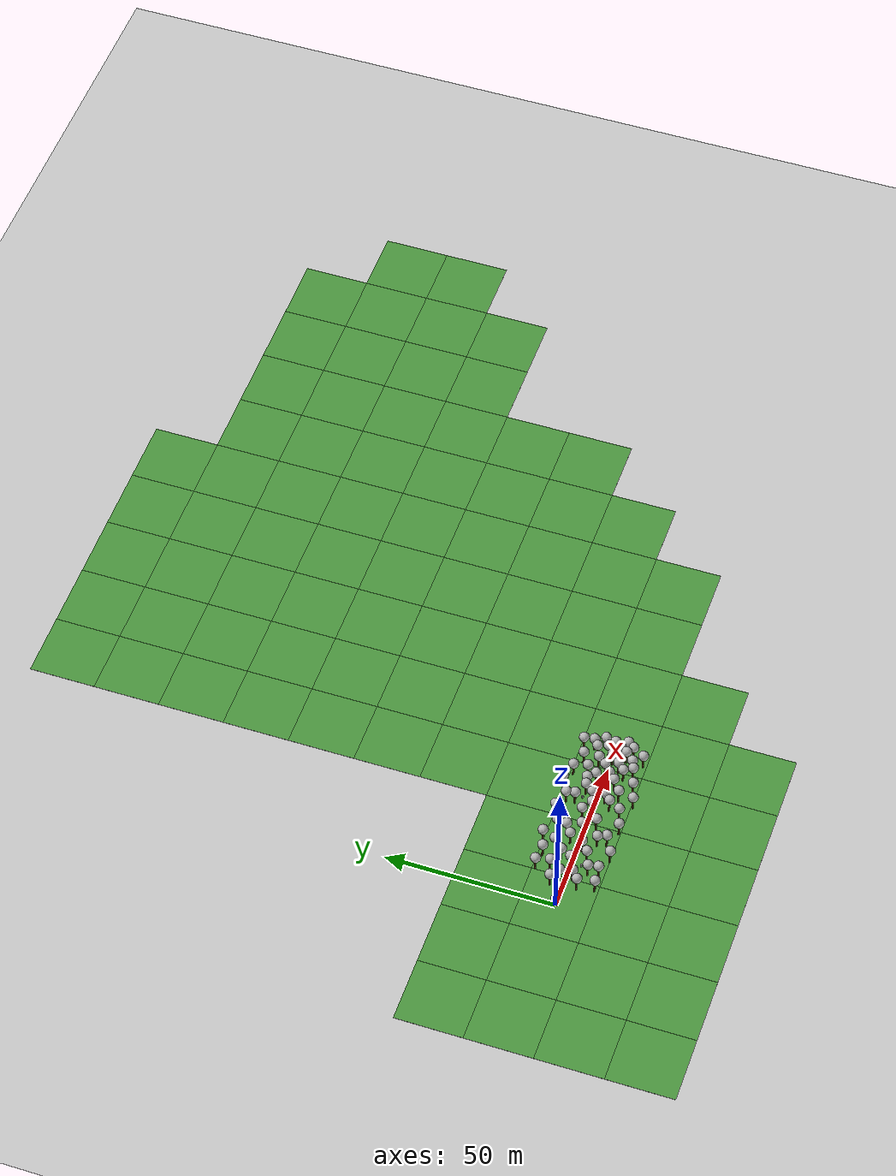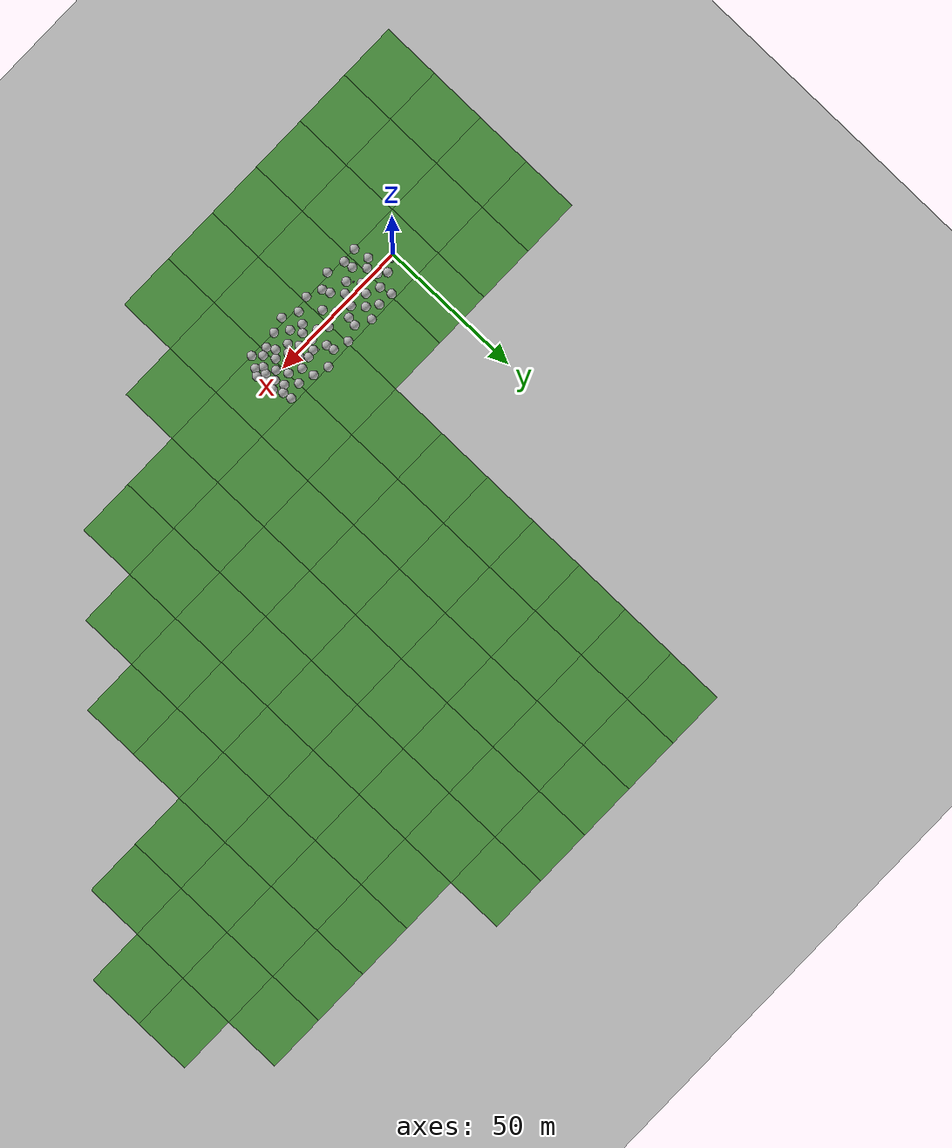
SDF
<sdf version="1.5">
 <world name="default">
  <include><uri>model://sun</uri></include>
  <include><uri>model://ground_plane</uri></include>
  <include><uri>model://grass_plane</uri></include>
  <model name="big_box_4">
   <static>1</static>
   <link name="link">
    <collision name="collision"><geometry><box><size>0.5 0.5 0.8</size></box></geometry></collision>
    <visual name="visual">
     <geometry><box><size>0.5 0.5 0.8</size></box></geometry>
     <material>
      <script><uri>file://media/materials/scripts/gazebo.material</uri><name>Gazebo/Grey</name></script>
     </material>
    </visual>
   </link>
   <pose>2.0 1.5 0.4 0 0 0</pose>
  </model>
  <model name="forest_pc_2">
   <static>1</static>
   <link name="link">
    <collision name="collision"><geometry><box><size>0.5 0.5 0.8</size></box></geometry></collision>
    <visual name="visual">
     <geometry><box><size>0.5 0.5 0.8</size></box></geometry>
     <material>
      <script><uri>file://media/materials/scripts/gazebo.material</uri><name>Gazebo/Grey</name></script>
     </material>
    </visual>
   </link>
   <pose>15.0 -3.0 0.4 0 0 0.5</pose>
  </model>
  <model name="forest_pc_3">
   <static>1</static>
   <link name="link">
    <collision name="collision"><geometry><box><size>0.5 0.5 0.8</size></box></geometry></collision>
    <visual name="visual">
     <geometry><box><size>0.5 0.5 0.8</size></box></geometry>
     <material>
      <script><uri>file://media/materials/scripts/gazebo.material</uri><name>Gazebo/Grey</name></script>
     </material>
    </visual>
   </link>
   <pose>38.0 4.0 0.4 0 0 -0.7</pose>
  </model>
  <model name="tree_1">
   <static>1</static>
   <include><uri>model://tree_simple</uri></include>
   <pose>6.0 3.5 0 0 0 0</pose>
  </model>
  <model name="tree_2">
   <static>1</static>
   <include><uri>model://tree_simple</uri></include>
   <pose>7.0 -4.0 0 0 0 0</pose>
  </model>
  <model name="tree_3">
   <static>1</static>
   <include><uri>model://tree_simple</uri></include>
   <pose>8.5 1.5 0 0 0 0</pose>
  </model>
  <model name="tree_4">
   <static>1</static>
   <include><uri>model://tree_simple</uri></include>
   <pose>9.5 -2.0 0 0 0 0</pose>
  </model>
  <model name="tree_5">
   <static>1</static>
   <include><uri>model://tree_simple</uri></include>
   <pose>11.0 5.0 0 0 0 0</pose>
  </model>
  <model name="tree_6">
   <static>1</static>
   <include><uri>model://tree_simple</uri></include>
   <pose>12.5 -5.5 0 0 0 0</pose>
  </model>
  <model name="tree_7">
   <static>1</static>
   <include><uri>model://tree_simple</uri></include>
   <pose>14.0 0.0 0 0 0 0</pose>
  </model>
  <model name="tree_8">
   <static>1</static>
   <include><uri>model://tree_simple</uri></include>
   <pose>15.5 3.2 0 0 0 0</pose>
  </model>
  <model name="tree_9">
   <static>1</static>
   <include><uri>model://tree_simple</uri></include>
   <pose>17.0 -3.8 0 0 0 0</pose>
  </model>
  <model name="tree_10">
   <static>1</static>
   <include><uri>model://tree_simple</uri></include>
   <pose>18.5 6.0 0 0 0 0</pose>
  </model>
  <model name="tree_11">
   <static>1</static>
   <include><uri>model://tree_simple</uri></include>
   <pose>20.0 -1.5 0 0 0 0</pose>
  </model>
  <model name="tree_12">
   <static>1</static>
   <include><uri>model://tree_simple</uri></include>
   <pose>21.5 2.5 0 0 0 0</pose>
  </model>
  <model name="tree_13">
   <static>1</static>
   <include><uri>model://tree_simple</uri></include>
   <pose>23.0 -5.0 0 0 0 0</pose>
  </model>
  <model name="tree_14">
   <static>1</static>
   <include><uri>model://tree_simple</uri></include>
   <pose>24.5 4.5 0 0 0 0</pose>
  </model>
  <model name="tree_15">
   <static>1</static>
   <include><uri>model://tree_simple</uri></include>
   <pose>26.0 0.5 0 0 0 0</pose>
  </model>
  <model name="tree_16">
   <static>1</static>
   <include><uri>model://tree_simple</uri></include>
   <pose>28.5 -3.0 0 0 0 0</pose>
  </model>
  <model name="tree_17">
   <static>1</static>
   <include><uri>model://tree_simple</uri></include>
   <pose>31.0 2.0 0 0 0 0</pose>
  </model>
  <model name="tree_18">
   <static>1</static>
   <include><uri>model://tree_simple</uri></include>
   <pose>34.0 0.0 0 0 0 0</pose>
  </model>
  <model name="tree_19">
   <static>1</static>
   <include><uri>model://tree_simple</uri></include>
   <pose>35.5 5.5 0 0 0 0</pose>
  </model>
  <model name="tree_20">
   <static>1</static>
   <include><uri>model://tree_simple</uri></include>
   <pose>36.0 -4.5 0 0 0 0</pose>
  </model>
  <model name="tree_21">
   <static>1</static>
   <include><uri>model://tree_simple</uri></include>
   <pose>37.5 1.0 0 0 0 0</pose>
  </model>
  <model name="tree_22">
   <static>1</static>
   <include><uri>model://tree_simple</uri></include>
   <pose>38.0 -2.5 0 0 0 0</pose>
  </model>
  <model name="tree_23">
   <static>1</static>
   <include><uri>model://tree_simple</uri></include>
   <pose>39.5 3.5 0 0 0 0</pose>
  </model>
  <model name="tree_24">
   <static>1</static>
   <include><uri>model://tree_simple</uri></include>
   <pose>40.0 -6.0 0 0 0 0</pose>
  </model>
  <model name="tree_25">
   <static>1</static>
   <include><uri>model://tree_simple</uri></include>
   <pose>41.5 -0.5 0 0 0 0</pose>
  </model>
  <model name="tree_26">
   <static>1</static>
   <include><uri>model://tree_simple</uri></include>
   <pose>42.0 4.0 0 0 0 0</pose>
  </model>
  <model name="tree_27">
   <static>1</static>
   <include><uri>model://tree_simple</uri></include>
   <pose>43.5 -3.5 0 0 0 0</pose>
  </model>
  <model name="tree_28">
   <static>1</static>
   <include><uri>model://tree_simple</uri></include>
   <pose>44.0 2.0 0 0 0 0</pose>
  </model>
  <model name="tree_29">
   <static>1</static>
   <include><uri>model://tree_simple</uri></include>
   <pose>45.5 -1.5 0 0 0 0</pose>
  </model>
  <model name="tree_30">
   <static>1</static>
   <include><uri>model://tree_simple</uri></include>
   <pose>46.0 5.0 0 0 0 0</pose>
  </model>
  <model name="tree_31">
   <static>1</static>
   <include><uri>model://tree_simple</uri></include>
   <pose>47.5 -5.0 0 0 0 0</pose>
  </model>
  <model name="tree_32">
   <static>1</static>
   <include><uri>model://tree_simple</uri></include>
   <pose>48.0 0.5 0 0 0 0</pose>
  </model>
  <model name="tree_33">
   <static>1</static>
   <include><uri>model://tree_simple</uri></include>
   <pose>49.5 -3.0 0 0 0 0</pose>
  </model>
  <model name="tree_34">
   <static>1</static>
   <include><uri>model://tree_simple</uri></include>
   <pose>50.0 3.0 0 0 0 0</pose>
  </model>
  <model name="tree_35">
   <static>1</static>
   <include><uri>model://tree_simple</uri></include>
   <pose>51.5 -6.5 0 0 0 0</pose>
  </model>
  <model name="tree_36">
   <static>1</static>
   <include><uri>model://tree_simple</uri></include>
   <pose>52.0 -0.5 0 0 0 0</pose>
  </model>
  <model name="tree_37">
   <static>1</static>
   <include><uri>model://tree_simple</uri></include>
   <pose>53.5 4.5 0 0 0 0</pose>
  </model>
  <model name="tree_38">
   <static>1</static>
   <include><uri>model://tree_simple</uri></include>
   <pose>54.0 -4.0 0 0 0 0</pose>
  </model>
  <model name="tree_39">
   <static>1</static>
   <include><uri>model://tree_simple</uri></include>
   <pose>54.5 1.5 0 0 0 0</pose>
  </model>
  <model name="tree_40">
   <static>1</static>
   <include><uri>model://tree_simple</uri></include>
   <pose>55.0 -2.0 0 0 0 0</pose>
  </model>
  <model name="tree_41">
   <static>1</static>
   <include><uri>model://tree_simple</uri></include>
   <pose>55.5 6.0 0 0 0 0</pose>
  </model>
  <model name="tree_42">
   <static>1</static>
   <include><uri>model://tree_simple</uri></include>
   <pose>56.0 -5.5 0 0 0 0</pose>
  </model>
  <model name="tree_43">
   <static>1</static>
   <include><uri>model://tree_simple</uri></include>
   <pose>56.5 0.0 0 0 0 0</pose>
  </model>
  <model name="tree_44">
   <static>1</static>
   <include><uri>model://tree_simple</uri></include>
   <pose>57.0 3.0 0 0 0 0</pose>
  </model>
  <model name="tree_45">
   <static>1</static>
   <include><uri>model://tree_simple</uri></include>
   <pose>57.5 -3.5 0 0 0 0</pose>
  </model>
  <model name="tree_L_1">
   <static>1</static>
   <include><uri>model://tree_simple</uri></include>
   <pose>10.0 9.0 0 0 0 0</pose>
  </model>
  <model name="tree_L_2">
   <static>1</static>
   <include><uri>model://tree_simple</uri></include>
   <pose>15.0 8.5 0 0 0 0</pose>
  </model>
  <model name="tree_L_3">
   <static>1</static>
   <include><uri>model://tree_simple</uri></include>
   <pose>20.0 10.0 0 0 0 0</pose>
  </model>
  <model name="tree_L_4">
   <static>1</static>
   <include><uri>model://tree_simple</uri></include>
   <pose>25.0 7.5 0 0 0 0</pose>
  </model>
  <model name="tree_L_5">
   <static>1</static>
   <include><uri>model://tree_simple</uri></include>
   <pose>30.0 9.5 0 0 0 0</pose>
  </model>
  <model name="tree_L_6">
   <static>1</static>
   <include><uri>model://tree_simple</uri></include>
   <pose>35.0 8.0 0 0 0 0</pose>
  </model>
  <model name="tree_L_7">
   <static>1</static>
   <include><uri>model://tree_simple</uri></include>
   <pose>40.0 10.5 0 0 0 0</pose>
  </model>
  <model name="tree_L_8">
   <static>1</static>
   <include><uri>model://tree_simple</uri></include>
   <pose>45.0 9.0 0 0 0 0</pose>
  </model>
  <model name="tree_L_9">
   <static>1</static>
   <include><uri>model://tree_simple</uri></include>
   <pose>50.0 7.5 0 0 0 0</pose>
  </model>
  <model name="tree_L_10">
   <static>1</static>
   <include><uri>model://tree_simple</uri></include>
   <pose>55.0 9.0 0 0 0 0</pose>
  </model>
  <model name="tree_R_1">
   <static>1</static>
   <include><uri>model://tree_simple</uri></include>
   <pose>8.0 -9.0 0 0 0 0</pose>
  </model>
  <model name="tree_R_2">
   <static>1</static>
   <include><uri>model://tree_simple</uri></include>
   <pose>13.0 -8.5 0 0 0 0</pose>
  </model>
  <model name="tree_R_3">
   <static>1</static>
   <include><uri>model://tree_simple</uri></include>
   <pose>19.0 -10.0 0 0 0 0</pose>
  </model>
  <model name="tree_R_4">
   <static>1</static>
   <include><uri>model://tree_simple</uri></include>
   <pose>24.0 -7.5 0 0 0 0</pose>
  </model>
  <model name="tree_R_5">
   <static>1</static>
   <include><uri>model://tree_simple</uri></include>
   <pose>29.0 -9.5 0 0 0 0</pose>
  </model>
  <model name="tree_R_6">
   <static>1</static>
   <include><uri>model://tree_simple</uri></include>
   <pose>34.0 -8.0 0 0 0 0</pose>
  </model>
  <model name="tree_R_7">
   <static>1</static>
   <include><uri>model://tree_simple</uri></include>
   <pose>39.0 -10.5 0 0 0 0</pose>
  </model>
  <model name="tree_R_8">
   <static>1</static>
   <include><uri>model://tree_simple</uri></include>
   <pose>44.0 -9.0 0 0 0 0</pose>
  </model>
  <model name="tree_R_9">
   <static>1</static>
   <include><uri>model://tree_simple</uri></include>
   <pose>49.0 -7.5 0 0 0 0</pose>
  </model>
  <model name="tree_R_10">
   <static>1</static>
   <include><uri>model://tree_simple</uri></include>
   <pose>54.0 -9.0 0 0 0 0</pose>
  </model>
  <physics name="default_physics" default="0" type="ode">
   <gravity>0 0 -9.8066</gravity>
   <ode>
    <solver>
     <type>quick</type>
     <iters>10</iters>
     <sor>1.3</sor>
     <use_dynamic_moi_rescaling>0</use_dynamic_moi_rescaling>
    </solver>
    <constraints>
     <cfm>0</cfm>
     <erp>0.2</erp>
     <contact_max_correcting_vel>100</contact_max_correcting_vel>
     <contact_surface_layer>0.001</contact_surface_layer>
    </constraints>
   </ode>
   <max_step_size>0.004</max_step_size>
   <real_time_factor>1</real_time_factor>
   <real_time_update_rate>250</real_time_update_rate>
   <magnetic_field>6.0e-6 2.3e-5 -4.2e-5</magnetic_field>
  </physics>
 </world>
</sdf>

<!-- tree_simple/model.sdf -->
<sdf version="1.5">
  <model name="tree_simple">
	  <static>1</static>
	<link name="link">
      <pose>0 0 0.1 0 0 0</pose>
      <inertial>
        <mass>666</mass>
        <inertia>
          <ixx>0.08611666666666669</ixx>
          <ixy>0</ixy>
          <ixz>0</ixz>
          <iyy>0.08611666666666669</iyy>
          <iyz>0</iyz>
          <izz>0.08611666666666669</izz>
        </inertia>
      </inertial>

      <collision name="collision_trunk">
        <pose>0 0 2.0 0 0 0</pose>
        <geometry>
          <cylinder>
            <radius>0.25</radius>
            <length>4</length>
          </cylinder>
        </geometry>
        <surface>
          <contact>
            <poissons_ratio>0.347</poissons_ratio>
            <elastic_modulus>8.8e+09</elastic_modulus>
            <ode>
              <kp>100000</kp>
              <kd>100</kd>
              <max_vel>100.0</max_vel>
              <min_depth>0.001</min_depth>
            </ode>
          </contact>
          <friction>
            <torsional>
              <coefficient>1.0</coefficient>
              <use_patch_radius>0</use_patch_radius>
              <surface_radius>0.01</surface_radius>
            </torsional>
          </friction>
        </surface>
      </collision>

      <collision name="collision_treetop">
        <pose>0 0 5.2 0 0 0</pose>
        <geometry>
          <sphere>
            <radius>1.5</radius>
          </sphere>
        </geometry>
        <surface>
          <contact>
            <poissons_ratio>0.347</poissons_ratio>
            <elastic_modulus>8.8e+09</elastic_modulus>
            <ode>
              <kp>100000</kp>
              <kd>100</kd>
              <max_vel>100.0</max_vel>
              <min_depth>0.001</min_depth>
            </ode>
          </contact>
          <friction>
            <torsional>
              <coefficient>1.0</coefficient>
              <use_patch_radius>0</use_patch_radius>
              <surface_radius>0.01</surface_radius>
            </torsional>
          </friction>
        </surface>
      </collision>

      <visual name="trunk">
        <pose>0 0 2.0 0 0 0</pose>
        <geometry>
          <cylinder>
            <radius>0.25</radius>
            <length>4</length>
          </cylinder>
        </geometry>
        <material>
          <script>
            <uri>model://tree_simple/scripts</uri>
            <uri>model://tree_simple/materials/textures</uri>
            <name>TreeSimple/Trunk</name>
          </script>
        </material>
      </visual>

      <visual name="treetop">
        <pose>0 0 5.2 0 0 0</pose>
        <geometry>
          <sphere>
            <radius>1.5</radius>
          </sphere>
        </geometry>
        <material>
          <script>
            <uri>model://tree_simple/scripts</uri>
            <uri>model://tree_simple/materials/textures</uri>
            <name>TreeSimple/Treetop</name>
          </script>
        </material>
      </visual>

    </link>
  </model>
</sdf>

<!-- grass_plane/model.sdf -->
<sdf version='1.4'>
  <model name='grass_plane'>
    <static>true</static>
    <link name='link'>
      <collision name='collision'>
        <geometry>
          <plane>
            <normal>0 0 1</normal>
            <size>500 500</size>
          </plane>
        </geometry>
        <surface>
          <friction>
            <ode>
              <mu>0.5</mu>
              <mu2>.5</mu2>
            </ode>
          </friction>
        </surface>
      </collision>

      <visual name='visual_0'>
        <pose>-40 -40 0 0 0 0</pose>

        <cast_shadows>false</cast_shadows>
        <geometry>
          <plane>
            <normal>0 0 1</normal>
            <size>20 20</size>
          </plane>
        </geometry>
        <material>
          <script>
            <uri>model://../model_source/models/grass_plane/materials/scripts</uri>
            <uri>model://../model_source/models/grass_plane/materials/textures</uri>
            <name>vrc/grass</name>
          </script>
        </material>
      </visual>

      <visual name='visual_1'>
        <pose>-20 -40 0 0 0 0</pose>

        <cast_shadows>false</cast_shadows>
        <geometry>
          <plane>
            <normal>0 0 1</normal>
            <size>20 20</size>
          </plane>
        </geometry>
        <material>
          <script>
            <uri>model://../model_source/models/grass_plane/materials/scripts</uri>
            <uri>model://../model_source/models/grass_plane/materials/textures</uri>
            <name>vrc/grass</name>
          </script>
        </material>
      </visual>

      <visual name='visual_2'>
        <pose>0 -40 0 0 0 0</pose>

        <cast_shadows>false</cast_shadows>
        <geometry>
          <plane>
            <normal>0 0 1</normal>
            <size>20 20</size>
          </plane>
        </geometry>
        <material>
          <script>
            <uri>model://../model_source/models/grass_plane/materials/scripts</uri>
            <uri>model://../model_source/models/grass_plane/materials/textures</uri>
            <name>vrc/grass</name>
          </script>
        </material>
      </visual>

      <visual name='visual_3'>
        <pose>20 -40 0 0 0 0</pose>

        <cast_shadows>false</cast_shadows>
        <geometry>
          <plane>
            <normal>0 0 1</normal>
            <size>20 20</size>
          </plane>
        </geometry>
        <material>
          <script>
            <uri>model://../model_source/models/grass_plane/materials/scripts</uri>
            <uri>model://../model_source/models/grass_plane/materials/textures</uri>
            <name>vrc/grass</name>
          </script>
        </material>
      </visual>

      <visual name='visual_4'>
        <pose>40 -40 0 0 0 0</pose>

        <cast_shadows>false</cast_shadows>
        <geometry>
          <plane>
            <normal>0 0 1</normal>
            <size>20 20</size>
          </plane>
        </geometry>
        <material>
          <script>
            <uri>model://../model_source/models/grass_plane/materials/scripts</uri>
            <uri>model://../model_source/models/grass_plane/materials/textures</uri>
            <name>vrc/grass</name>
          </script>
        </material>
      </visual>

      <visual name='visual_5'>
        <pose>60 -40 0 0 0 0</pose>

        <cast_shadows>false</cast_shadows>
        <geometry>
          <plane>
            <normal>0 0 1</normal>
            <size>20 20</size>
          </plane>
        </geometry>
        <material>
          <script>
            <uri>model://../model_source/models/grass_plane/materials/scripts</uri>
            <uri>model://../model_source/models/grass_plane/materials/textures</uri>
            <name>vrc/grass</name>
          </script>
        </material>
      </visual>

      <visual name='visual_6'>
        <pose>-40 -20 0 0 0 0</pose>

        <cast_shadows>false</cast_shadows>
        <geometry>
          <plane>
            <normal>0 0 1</normal>
            <size>20 20</size>
          </plane>
        </geometry>
        <material>
          <script>
            <uri>model://../model_source/models/grass_plane/materials/scripts</uri>
            <uri>model://../model_source/models/grass_plane/materials/textures</uri>
            <name>vrc/grass</name>
          </script>
        </material>
      </visual>

      <visual name='visual_7'>
        <pose>-20 -20 0 0 0 0</pose>

        <cast_shadows>false</cast_shadows>
        <geometry>
          <plane>
            <normal>0 0 1</normal>
            <size>20 20</size>
          </plane>
        </geometry>
        <material>
          <script>
            <uri>model://../model_source/models/grass_plane/materials/scripts</uri>
            <uri>model://../model_source/models/grass_plane/materials/textures</uri>
            <name>vrc/grass</name>
          </script>
        </material>
      </visual>

      <visual name='visual_8'>
        <pose>0 -20 0 0 0 0</pose>

        <cast_shadows>false</cast_shadows>
        <geometry>
          <plane>
            <normal>0 0 1</normal>
            <size>20 20</size>
          </plane>
        </geometry>
        <material>
          <script>
            <uri>model://../model_source/models/grass_plane/materials/scripts</uri>
            <uri>model://../model_source/models/grass_plane/materials/textures</uri>
            <name>vrc/grass</name>
          </script>
        </material>
      </visual>

      <visual name='visual_9'>
        <pose>20 -20 0 0 0 0</pose>

        <cast_shadows>false</cast_shadows>
        <geometry>
          <plane>
            <normal>0 0 1</normal>
            <size>20 20</size>
          </plane>
        </geometry>
        <material>
          <script>
            <uri>model://../model_source/models/grass_plane/materials/scripts</uri>
            <uri>model://../model_source/models/grass_plane/materials/textures</uri>
            <name>vrc/grass</name>
          </script>
        </material>
      </visual>

      <visual name='visual_10'>
        <pose>40 -20 0 0 0 0</pose>

        <cast_shadows>false</cast_shadows>
        <geometry>
          <plane>
            <normal>0 0 1</normal>
            <size>20 20</size>
          </plane>
        </geometry>
        <material>
          <script>
            <uri>model://../model_source/models/grass_plane/materials/scripts</uri>
            <uri>model://../model_source/models/grass_plane/materials/textures</uri>
            <name>vrc/grass</name>
          </script>
        </material>
      </visual>

      <visual name='visual_11'>
        <pose>60 -20 0 0 0 0</pose>

        <cast_shadows>false</cast_shadows>
        <geometry>
          <plane>
            <normal>0 0 1</normal>
            <size>20 20</size>
          </plane>
        </geometry>
        <material>
          <script>
            <uri>model://../model_source/models/grass_plane/materials/scripts</uri>
            <uri>model://../model_source/models/grass_plane/materials/textures</uri>
            <name>vrc/grass</name>
          </script>
        </material>
      </visual>

      <visual name='visual_12'>
        <pose>80 -20 0 0 0 0</pose>

        <cast_shadows>false</cast_shadows>
        <geometry>
          <plane>
            <normal>0 0 1</normal>
            <size>20 20</size>
          </plane>
        </geometry>
        <material>
          <script>
            <uri>model://../model_source/models/grass_plane/materials/scripts</uri>
            <uri>model://../model_source/models/grass_plane/materials/textures</uri>
            <name>vrc/grass</name>
          </script>
        </material>
      </visual>

      <visual name='visual_13'>
        <pose>-40 0 0 0 0 0</pose>

        <cast_shadows>false</cast_shadows>
        <geometry>
          <plane>
            <normal>0 0 1</normal>
            <size>20 20</size>
          </plane>
        </geometry>
        <material>
          <script>
            <uri>model://../model_source/models/grass_plane/materials/scripts</uri>
            <uri>model://../model_source/models/grass_plane/materials/textures</uri>
            <name>vrc/grass</name>
          </script>
        </material>
      </visual>

      <visual name='visual_14'>
        <pose>-20 0 0 0 0 0</pose>

        <cast_shadows>false</cast_shadows>
        <geometry>
          <plane>
            <normal>0 0 1</normal>
            <size>20 20</size>
          </plane>
        </geometry>
        <material>
          <script>
            <uri>model://../model_source/models/grass_plane/materials/scripts</uri>
            <uri>model://../model_source/models/grass_plane/materials/textures</uri>
            <name>vrc/grass</name>
          </script>
        </material>
      </visual>

      <visual name='visual_15'>
        <pose>0 0 0 0 0 0</pose>

        <cast_shadows>false</cast_shadows>
        <geometry>
          <plane>
            <normal>0 0 1</normal>
            <size>20 20</size>
          </plane>
        </geometry>
        <material>
          <script>
            <uri>model://../model_source/models/grass_plane/materials/scripts</uri>
            <uri>model://../model_source/models/grass_plane/materials/textures</uri>
            <name>vrc/grass</name>
          </script>
        </material>
      </visual>

      <visual name='visual_16'>
        <pose>20 0 0 0 0 0</pose>

        <cast_shadows>false</cast_shadows>
        <geometry>
          <plane>
            <normal>0 0 1</normal>
            <size>20 20</size>
          </plane>
        </geometry>
        <material>
          <script>
            <uri>model://../model_source/models/grass_plane/materials/scripts</uri>
            <uri>model://../model_source/models/grass_plane/materials/textures</uri>
            <name>vrc/grass</name>
          </script>
        </material>
      </visual>

      <visual name='visual_17'>
        <pose>40 0 0 0 0 0</pose>

        <cast_shadows>false</cast_shadows>
        <geometry>
          <plane>
            <normal>0 0 1</normal>
            <size>20 20</size>
          </plane>
        </geometry>
        <material>
          <script>
            <uri>model://../model_source/models/grass_plane/materials/scripts</uri>
            <uri>model://../model_source/models/grass_plane/materials/textures</uri>
            <name>vrc/grass</name>
          </script>
        </material>
      </visual>

      <visual name='visual_18'>
        <pose>60 0 0 0 0 0</pose>

        <cast_shadows>false</cast_shadows>
        <geometry>
          <plane>
            <normal>0 0 1</normal>
            <size>20 20</size>
          </plane>
        </geometry>
        <material>
          <script>
            <uri>model://../model_source/models/grass_plane/materials/scripts</uri>
            <uri>model://../model_source/models/grass_plane/materials/textures</uri>
            <name>vrc/grass</name>
          </script>
        </material>
      </visual>

      <visual name='visual_19'>
        <pose>80 0 0 0 0 0</pose>

        <cast_shadows>false</cast_shadows>
        <geometry>
          <plane>
            <normal>0 0 1</normal>
            <size>20 20</size>
          </plane>
        </geometry>
        <material>
          <script>
            <uri>model://../model_source/models/grass_plane/materials/scripts</uri>
            <uri>model://../model_source/models/grass_plane/materials/textures</uri>
            <name>vrc/grass</name>
          </script>
        </material>
      </visual>

      <visual name='visual_20'>
        <pose>100 0 0 0 0 0</pose>

        <cast_shadows>false</cast_shadows>
        <geometry>
          <plane>
            <normal>0 0 1</normal>
            <size>20 20</size>
          </plane>
        </geometry>
        <material>
          <script>
            <uri>model://../model_source/models/grass_plane/materials/scripts</uri>
            <uri>model://../model_source/models/grass_plane/materials/textures</uri>
            <name>vrc/grass</name>
          </script>
        </material>
      </visual>

      <visual name='visual_21'>
        <pose>120 0 0 0 0 0</pose>

        <cast_shadows>false</cast_shadows>
        <geometry>
          <plane>
            <normal>0 0 1</normal>
            <size>20 20</size>
          </plane>
        </geometry>
        <material>
          <script>
            <uri>model://../model_source/models/grass_plane/materials/scripts</uri>
            <uri>model://../model_source/models/grass_plane/materials/textures</uri>
            <name>vrc/grass</name>
          </script>
        </material>
      </visual>

      <visual name='visual_22'>
        <pose>-40 20 0 0 0 0</pose>

        <cast_shadows>false</cast_shadows>
        <geometry>
          <plane>
            <normal>0 0 1</normal>
            <size>20 20</size>
          </plane>
        </geometry>
        <material>
          <script>
            <uri>model://../model_source/models/grass_plane/materials/scripts</uri>
            <uri>model://../model_source/models/grass_plane/materials/textures</uri>
            <name>vrc/grass</name>
          </script>
        </material>
      </visual>

      <visual name='visual_23'>
        <pose>-20 20 0 0 0 0</pose>

        <cast_shadows>false</cast_shadows>
        <geometry>
          <plane>
            <normal>0 0 1</normal>
            <size>20 20</size>
          </plane>
        </geometry>
        <material>
          <script>
            <uri>model://../model_source/models/grass_plane/materials/scripts</uri>
            <uri>model://../model_source/models/grass_plane/materials/textures</uri>
            <name>vrc/grass</name>
          </script>
        </material>
      </visual>

      <visual name='visual_24'>
        <pose>0 20 0 0 0 0</pose>

        <cast_shadows>false</cast_shadows>
        <geometry>
          <plane>
            <normal>0 0 1</normal>
            <size>20 20</size>
          </plane>
        </geometry>
        <material>
          <script>
            <uri>model://../model_source/models/grass_plane/materials/scripts</uri>
            <uri>model://../model_source/models/grass_plane/materials/textures</uri>
            <name>vrc/grass</name>
          </script>
        </material>
      </visual>

      <visual name='visual_25'>
        <pose>20 20 0 0 0 0</pose>

        <cast_shadows>false</cast_shadows>
        <geometry>
          <plane>
            <normal>0 0 1</normal>
            <size>20 20</size>
          </plane>
        </geometry>
        <material>
          <script>
            <uri>model://../model_source/models/grass_plane/materials/scripts</uri>
            <uri>model://../model_source/models/grass_plane/materials/textures</uri>
            <name>vrc/grass</name>
          </script>
        </material>
      </visual>

      <visual name='visual_26'>
        <pose>40 20 0 0 0 0</pose>

        <cast_shadows>false</cast_shadows>
        <geometry>
          <plane>
            <normal>0 0 1</normal>
            <size>20 20</size>
          </plane>
        </geometry>
        <material>
          <script>
            <uri>model://../model_source/models/grass_plane/materials/scripts</uri>
            <uri>model://../model_source/models/grass_plane/materials/textures</uri>
            <name>vrc/grass</name>
          </script>
        </material>
      </visual>

      <visual name='visual_27'>
        <pose>60 20 0 0 0 0</pose>

        <cast_shadows>false</cast_shadows>
        <geometry>
          <plane>
            <normal>0 0 1</normal>
            <size>20 20</size>
          </plane>
        </geometry>
        <material>
          <script>
            <uri>model://../model_source/models/grass_plane/materials/scripts</uri>
            <uri>model://../model_source/models/grass_plane/materials/textures</uri>
            <name>vrc/grass</name>
          </script>
        </material>
      </visual>

      <visual name='visual_28'>
        <pose>80 20 0 0 0 0</pose>

        <cast_shadows>false</cast_shadows>
        <geometry>
          <plane>
            <normal>0 0 1</normal>
            <size>20 20</size>
          </plane>
        </geometry>
        <material>
          <script>
            <uri>model://../model_source/models/grass_plane/materials/scripts</uri>
            <uri>model://../model_source/models/grass_plane/materials/textures</uri>
            <name>vrc/grass</name>
          </script>
        </material>
      </visual>

      <visual name='visual_29'>
        <pose>100 20 0 0 0 0</pose>

        <cast_shadows>false</cast_shadows>
        <geometry>
          <plane>
            <normal>0 0 1</normal>
            <size>20 20</size>
          </plane>
        </geometry>
        <material>
          <script>
            <uri>model://../model_source/models/grass_plane/materials/scripts</uri>
            <uri>model://../model_source/models/grass_plane/materials/textures</uri>
            <name>vrc/grass</name>
          </script>
        </material>
      </visual>

      <visual name='visual_30'>
        <pose>120 20 0 0 0 0</pose>

        <cast_shadows>false</cast_shadows>
        <geometry>
          <plane>
            <normal>0 0 1</normal>
            <size>20 20</size>
          </plane>
        </geometry>
        <material>
          <script>
            <uri>model://../model_source/models/grass_plane/materials/scripts</uri>
            <uri>model://../model_source/models/grass_plane/materials/textures</uri>
            <name>vrc/grass</name>
          </script>
        </material>
      </visual>

      <visual name='visual_31'>
        <pose>140 20 0 0 0 0</pose>

        <cast_shadows>false</cast_shadows>
        <geometry>
          <plane>
            <normal>0 0 1</normal>
            <size>20 20</size>
          </plane>
        </geometry>
        <material>
          <script>
            <uri>model://../model_source/models/grass_plane/materials/scripts</uri>
            <uri>model://../model_source/models/grass_plane/materials/textures</uri>
            <name>vrc/grass</name>
          </script>
        </material>
      </visual>

      <visual name='visual_32'>
        <pose>40 40 0 0 0 0</pose>

        <cast_shadows>false</cast_shadows>
        <geometry>
          <plane>
            <normal>0 0 1</normal>
            <size>20 20</size>
          </plane>
        </geometry>
        <material>
          <script>
            <uri>model://../model_source/models/grass_plane/materials/scripts</uri>
            <uri>model://../model_source/models/grass_plane/materials/textures</uri>
            <name>vrc/grass</name>
          </script>
        </material>
      </visual>

      <visual name='visual_33'>
        <pose>60 40 0 0 0 0</pose>

        <cast_shadows>false</cast_shadows>
        <geometry>
          <plane>
            <normal>0 0 1</normal>
            <size>20 20</size>
          </plane>
        </geometry>
        <material>
          <script>
            <uri>model://../model_source/models/grass_plane/materials/scripts</uri>
            <uri>model://../model_source/models/grass_plane/materials/textures</uri>
            <name>vrc/grass</name>
          </script>
        </material>
      </visual>

      <visual name='visual_34'>
        <pose>80 40 0 0 0 0</pose>

        <cast_shadows>false</cast_shadows>
        <geometry>
          <plane>
            <normal>0 0 1</normal>
            <size>20 20</size>
          </plane>
        </geometry>
        <material>
          <script>
            <uri>model://../model_source/models/grass_plane/materials/scripts</uri>
            <uri>model://../model_source/models/grass_plane/materials/textures</uri>
            <name>vrc/grass</name>
          </script>
        </material>
      </visual>

      <visual name='visual_35'>
        <pose>100 40 0 0 0 0</pose>

        <cast_shadows>false</cast_shadows>
        <geometry>
          <plane>
            <normal>0 0 1</normal>
            <size>20 20</size>
          </plane>
        </geometry>
        <material>
          <script>
            <uri>model://../model_source/models/grass_plane/materials/scripts</uri>
            <uri>model://../model_source/models/grass_plane/materials/textures</uri>
            <name>vrc/grass</name>
          </script>
        </material>
      </visual>

      <visual name='visual_36'>
        <pose>120 40 0 0 0 0</pose>

        <cast_shadows>false</cast_shadows>
        <geometry>
          <plane>
            <normal>0 0 1</normal>
            <size>20 20</size>
          </plane>
        </geometry>
        <material>
          <script>
            <uri>model://../model_source/models/grass_plane/materials/scripts</uri>
            <uri>model://../model_source/models/grass_plane/materials/textures</uri>
            <name>vrc/grass</name>
          </script>
        </material>
      </visual>

      <visual name='visual_37'>
        <pose>140 40 0 0 0 0</pose>

        <cast_shadows>false</cast_shadows>
        <geometry>
          <plane>
            <normal>0 0 1</normal>
            <size>20 20</size>
          </plane>
        </geometry>
        <material>
          <script>
            <uri>model://../model_source/models/grass_plane/materials/scripts</uri>
            <uri>model://../model_source/models/grass_plane/materials/textures</uri>
            <name>vrc/grass</name>
          </script>
        </material>
      </visual>

      <visual name='visual_38'>
        <pose>160 40 0 0 0 0</pose>

        <cast_shadows>false</cast_shadows>
        <geometry>
          <plane>
            <normal>0 0 1</normal>
            <size>20 20</size>
          </plane>
        </geometry>
        <material>
          <script>
            <uri>model://../model_source/models/grass_plane/materials/scripts</uri>
            <uri>model://../model_source/models/grass_plane/materials/textures</uri>
            <name>vrc/grass</name>
          </script>
        </material>
      </visual>

      <visual name='visual_39'>
        <pose>40 60 0 0 0 0</pose>

        <cast_shadows>false</cast_shadows>
        <geometry>
          <plane>
            <normal>0 0 1</normal>
            <size>20 20</size>
          </plane>
        </geometry>
        <material>
          <script>
            <uri>model://../model_source/models/grass_plane/materials/scripts</uri>
            <uri>model://../model_source/models/grass_plane/materials/textures</uri>
            <name>vrc/grass</name>
          </script>
        </material>
      </visual>

      <visual name='visual_40'>
        <pose>60 60 0 0 0 0</pose>

        <cast_shadows>false</cast_shadows>
        <geometry>
          <plane>
            <normal>0 0 1</normal>
            <size>20 20</size>
          </plane>
        </geometry>
        <material>
          <script>
            <uri>model://../model_source/models/grass_plane/materials/scripts</uri>
            <uri>model://../model_source/models/grass_plane/materials/textures</uri>
            <name>vrc/grass</name>
          </script>
        </material>
      </visual>

      <visual name='visual_41'>
        <pose>80 60 0 0 0 0</pose>

        <cast_shadows>false</cast_shadows>
        <geometry>
          <plane>
            <normal>0 0 1</normal>
            <size>20 20</size>
          </plane>
        </geometry>
        <material>
          <script>
            <uri>model://../model_source/models/grass_plane/materials/scripts</uri>
            <uri>model://../model_source/models/grass_plane/materials/textures</uri>
            <name>vrc/grass</name>
          </script>
        </material>
      </visual>

      <visual name='visual_42'>
        <pose>100 60 0 0 0 0</pose>

        <cast_shadows>false</cast_shadows>
        <geometry>
          <plane>
            <normal>0 0 1</normal>
            <size>20 20</size>
          </plane>
        </geometry>
        <material>
          <script>
            <uri>model://../model_source/models/grass_plane/materials/scripts</uri>
            <uri>model://../model_source/models/grass_plane/materials/textures</uri>
            <name>vrc/grass</name>
          </script>
        </material>
      </visual>

      <visual name='visual_43'>
        <pose>120 60 0 0 0 0</pose>

        <cast_shadows>false</cast_shadows>
        <geometry>
          <plane>
            <normal>0 0 1</normal>
            <size>20 20</size>
          </plane>
        </geometry>
        <material>
          <script>
            <uri>model://../model_source/models/grass_plane/materials/scripts</uri>
            <uri>model://../model_source/models/grass_plane/materials/textures</uri>
            <name>vrc/grass</name>
          </script>
        </material>
      </visual>

      <visual name='visual_44'>
        <pose>140 60 0 0 0 0</pose>

        <cast_shadows>false</cast_shadows>
        <geometry>
          <plane>
            <normal>0 0 1</normal>
            <size>20 20</size>
          </plane>
        </geometry>
        <material>
          <script>
            <uri>model://../model_source/models/grass_plane/materials/scripts</uri>
            <uri>model://../model_source/models/grass_plane/materials/textures</uri>
            <name>vrc/grass</name>
          </script>
        </material>
      </visual>

      <visual name='visual_45'>
        <pose>160 60 0 0 0 0</pose>

        <cast_shadows>false</cast_shadows>
        <geometry>
          <plane>
            <normal>0 0 1</normal>
            <size>20 20</size>
          </plane>
        </geometry>
        <material>
          <script>
            <uri>model://../model_source/models/grass_plane/materials/scripts</uri>
            <uri>model://../model_source/models/grass_plane/materials/textures</uri>
            <name>vrc/grass</name>
          </script>
        </material>
      </visual>

      <visual name='visual_46'>
        <pose>40 80 0 0 0 0</pose>

        <cast_shadows>false</cast_shadows>
        <geometry>
          <plane>
            <normal>0 0 1</normal>
            <size>20 20</size>
          </plane>
        </geometry>
        <material>
          <script>
            <uri>model://../model_source/models/grass_plane/materials/scripts</uri>
            <uri>model://../model_source/models/grass_plane/materials/textures</uri>
            <name>vrc/grass</name>
          </script>
        </material>
      </visual>

      <visual name='visual_47'>
        <pose>60 80 0 0 0 0</pose>

        <cast_shadows>false</cast_shadows>
        <geometry>
          <plane>
            <normal>0 0 1</normal>
            <size>20 20</size>
          </plane>
        </geometry>
        <material>
          <script>
            <uri>model://../model_source/models/grass_plane/materials/scripts</uri>
            <uri>model://../model_source/models/grass_plane/materials/textures</uri>
            <name>vrc/grass</name>
          </script>
        </material>
      </visual>

      <visual name='visual_48'>
        <pose>80 80 0 0 0 0</pose>

        <cast_shadows>false</cast_shadows>
        <geometry>
          <plane>
            <normal>0 0 1</normal>
            <size>20 20</size>
          </plane>
        </geometry>
        <material>
          <script>
            <uri>model://../model_source/models/grass_plane/materials/scripts</uri>
            <uri>model://../model_source/models/grass_plane/materials/textures</uri>
            <name>vrc/grass</name>
          </script>
        </material>
      </visual>

      <visual name='visual_49'>
        <pose>100 80 0 0 0 0</pose>

        <cast_shadows>false</cast_shadows>
        <geometry>
          <plane>
            <normal>0 0 1</normal>
            <size>20 20</size>
          </plane>
        </geometry>
        <material>
          <script>
            <uri>model://../model_source/models/grass_plane/materials/scripts</uri>
            <uri>model://../model_source/models/grass_plane/materials/textures</uri>
            <name>vrc/grass</name>
          </script>
        </material>
      </visual>

      <visual name='visual_50'>
        <pose>120 80 0 0 0 0</pose>

        <cast_shadows>false</cast_shadows>
        <geometry>
          <plane>
            <normal>0 0 1</normal>
            <size>20 20</size>
          </plane>
        </geometry>
        <material>
          <script>
            <uri>model://../model_source/models/grass_plane/materials/scripts</uri>
            <uri>model://../model_source/models/grass_plane/materials/textures</uri>
            <name>vrc/grass</name>
          </script>
        </material>
      </visual>

      <visual name='visual_51'>
        <pose>140 80 0 0 0 0</pose>

        <cast_shadows>false</cast_shadows>
        <geometry>
          <plane>
            <normal>0 0 1</normal>
            <size>20 20</size>
          </plane>
        </geometry>
        <material>
          <script>
            <uri>model://../model_source/models/grass_plane/materials/scripts</uri>
            <uri>model://../model_source/models/grass_plane/materials/textures</uri>
            <name>vrc/grass</name>
          </script>
        </material>
      </visual>

      <visual name='visual_52'>
        <pose>160 80 0 0 0 0</pose>

        <cast_shadows>false</cast_shadows>
        <geometry>
          <plane>
            <normal>0 0 1</normal>
            <size>20 20</size>
          </plane>
        </geometry>
        <material>
          <script>
            <uri>model://../model_source/models/grass_plane/materials/scripts</uri>
            <uri>model://../model_source/models/grass_plane/materials/textures</uri>
            <name>vrc/grass</name>
          </script>
        </material>
      </visual>

      <visual name='visual_53'>
        <pose>180 80 0 0 0 0</pose>

        <cast_shadows>false</cast_shadows>
        <geometry>
          <plane>
            <normal>0 0 1</normal>
            <size>20 20</size>
          </plane>
        </geometry>
        <material>
          <script>
            <uri>model://../model_source/models/grass_plane/materials/scripts</uri>
            <uri>model://../model_source/models/grass_plane/materials/textures</uri>
            <name>vrc/grass</name>
          </script>
        </material>
      </visual>

      <visual name='visual_54'>
        <pose>200 80 0 0 0 0</pose>

        <cast_shadows>false</cast_shadows>
        <geometry>
          <plane>
            <normal>0 0 1</normal>
            <size>20 20</size>
          </plane>
        </geometry>
        <material>
          <script>
            <uri>model://../model_source/models/grass_plane/materials/scripts</uri>
            <uri>model://../model_source/models/grass_plane/materials/textures</uri>
            <name>vrc/grass</name>
          </script>
        </material>
      </visual>

      <visual name='visual_55'>
        <pose>40 100 0 0 0 0</pose>

        <cast_shadows>false</cast_shadows>
        <geometry>
          <plane>
            <normal>0 0 1</normal>
            <size>20 20</size>
          </plane>
        </geometry>
        <material>
          <script>
            <uri>model://../model_source/models/grass_plane/materials/scripts</uri>
            <uri>model://../model_source/models/grass_plane/materials/textures</uri>
            <name>vrc/grass</name>
          </script>
        </material>
      </visual>

      <visual name='visual_56'>
        <pose>60 100 0 0 0 0</pose>

        <cast_shadows>false</cast_shadows>
        <geometry>
          <plane>
            <normal>0 0 1</normal>
            <size>20 20</size>
          </plane>
        </geometry>
        <material>
          <script>
            <uri>model://../model_source/models/grass_plane/materials/scripts</uri>
            <uri>model://../model_source/models/grass_plane/materials/textures</uri>
            <name>vrc/grass</name>
          </script>
        </material>
      </visual>

      <visual name='visual_57'>
        <pose>80 100 0 0 0 0</pose>

        <cast_shadows>false</cast_shadows>
        <geometry>
          <plane>
            <normal>0 0 1</normal>
            <size>20 20</size>
          </plane>
        </geometry>
        <material>
          <script>
            <uri>model://../model_source/models/grass_plane/materials/scripts</uri>
            <uri>model://../model_source/models/grass_plane/materials/textures</uri>
            <name>vrc/grass</name>
          </script>
        </material>
      </visual>

      <visual name='visual_58'>
        <pose>100 100 0 0 0 0</pose>

        <cast_shadows>false</cast_shadows>
        <geometry>
          <plane>
            <normal>0 0 1</normal>
            <size>20 20</size>
          </plane>
        </geometry>
        <material>
          <script>
            <uri>model://../model_source/models/grass_plane/materials/scripts</uri>
            <uri>model://../model_source/models/grass_plane/materials/textures</uri>
            <name>vrc/grass</name>
          </script>
        </material>
      </visual>

      <visual name='visual_59'>
        <pose>120 100 0 0 0 0</pose>

        <cast_shadows>false</cast_shadows>
        <geometry>
          <plane>
            <normal>0 0 1</normal>
            <size>20 20</size>
          </plane>
        </geometry>
        <material>
          <script>
            <uri>model://../model_source/models/grass_plane/materials/scripts</uri>
            <uri>model://../model_source/models/grass_plane/materials/textures</uri>
            <name>vrc/grass</name>
          </script>
        </material>
      </visual>

      <visual name='visual_60'>
        <pose>140 100 0 0 0 0</pose>

        <cast_shadows>false</cast_shadows>
        <geometry>
          <plane>
            <normal>0 0 1</normal>
            <size>20 20</size>
          </plane>
        </geometry>
        <material>
          <script>
            <uri>model://../model_source/models/grass_plane/materials/scripts</uri>
            <uri>model://../model_source/models/grass_plane/materials/textures</uri>
            <name>vrc/grass</name>
          </script>
        </material>
      </visual>

      <visual name='visual_61'>
        <pose>160 100 0 0 0 0</pose>

        <cast_shadows>false</cast_shadows>
        <geometry>
          <plane>
            <normal>0 0 1</normal>
            <size>20 20</size>
          </plane>
        </geometry>
        <material>
          <script>
            <uri>model://../model_source/models/grass_plane/materials/scripts</uri>
            <uri>model://../model_source/models/grass_plane/materials/textures</uri>
            <name>vrc/grass</name>
          </script>
        </material>
      </visual>

      <visual name='visual_62'>
        <pose>180 100 0 0 0 0</pose>

        <cast_shadows>false</cast_shadows>
        <geometry>
          <plane>
            <normal>0 0 1</normal>
            <size>20 20</size>
          </plane>
        </geometry>
        <material>
          <script>
            <uri>model://../model_source/models/grass_plane/materials/scripts</uri>
            <uri>model://../model_source/models/grass_plane/materials/textures</uri>
            <name>vrc/grass</name>
          </script>
        </material>
      </visual>

      <visual name='visual_63'>
        <pose>200 100 0 0 0 0</pose>

        <cast_shadows>false</cast_shadows>
        <geometry>
          <plane>
            <normal>0 0 1</normal>
            <size>20 20</size>
          </plane>
        </geometry>
        <material>
          <script>
            <uri>model://../model_source/models/grass_plane/materials/scripts</uri>
            <uri>model://../model_source/models/grass_plane/materials/textures</uri>
            <name>vrc/grass</name>
          </script>
        </material>
      </visual>

      <visual name='visual_63a'>
        <pose>220 100 0 0 0 0</pose>

        <cast_shadows>false</cast_shadows>
        <geometry>
          <plane>
            <normal>0 0 1</normal>
            <size>20 20</size>
          </plane>
        </geometry>
        <material>
          <script>
            <uri>model://../model_source/models/grass_plane/materials/scripts</uri>
            <uri>model://../model_source/models/grass_plane/materials/textures</uri>
            <name>vrc/grass</name>
          </script>
        </material>
      </visual>

      <visual name='visual_64'>
        <pose>40 120 0 0 0 0</pose>

        <cast_shadows>false</cast_shadows>
        <geometry>
          <plane>
            <normal>0 0 1</normal>
            <size>20 20</size>
          </plane>
        </geometry>
        <material>
          <script>
            <uri>model://../model_source/models/grass_plane/materials/scripts</uri>
            <uri>model://../model_source/models/grass_plane/materials/textures</uri>
            <name>vrc/grass</name>
          </script>
        </material>
      </visual>

      <visual name='visual_65'>
        <pose>60 120 0 0 0 0</pose>

        <cast_shadows>false</cast_shadows>
        <geometry>
          <plane>
            <normal>0 0 1</normal>
            <size>20 20</size>
          </plane>
        </geometry>
        <material>
          <script>
            <uri>model://../model_source/models/grass_plane/materials/scripts</uri>
            <uri>model://../model_source/models/grass_plane/materials/textures</uri>
            <name>vrc/grass</name>
          </script>
        </material>
      </visual>

      <visual name='visual_66'>
        <pose>80 120 0 0 0 0</pose>

        <cast_shadows>false</cast_shadows>
        <geometry>
          <plane>
            <normal>0 0 1</normal>
            <size>20 20</size>
          </plane>
        </geometry>
        <material>
          <script>
            <uri>model://../model_source/models/grass_plane/materials/scripts</uri>
            <uri>model://../model_source/models/grass_plane/materials/textures</uri>
            <name>vrc/grass</name>
          </script>
        </material>
      </visual>

      <visual name='visual_67'>
        <pose>100 120 0 0 0 0</pose>

        <cast_shadows>false</cast_shadows>
        <geometry>
          <plane>
            <normal>0 0 1</normal>
            <size>20 20</size>
          </plane>
        </geometry>
        <material>
          <script>
            <uri>model://../model_source/models/grass_plane/materials/scripts</uri>
            <uri>model://../model_source/models/grass_plane/materials/textures</uri>
            <name>vrc/grass</name>
          </script>
        </material>
      </visual>

      <visual name='visual_68'>
        <pose>120 120 0 0 0 0</pose>

        <cast_shadows>false</cast_shadows>
        <geometry>
          <plane>
            <normal>0 0 1</normal>
            <size>20 20</size>
          </plane>
        </geometry>
        <material>
          <script>
            <uri>model://../model_source/models/grass_plane/materials/scripts</uri>
            <uri>model://../model_source/models/grass_plane/materials/textures</uri>
            <name>vrc/grass</name>
          </script>
        </material>
      </visual>

      <visual name='visual_69'>
        <pose>140 120 0 0 0 0</pose>

        <cast_shadows>false</cast_shadows>
        <geometry>
          <plane>
            <normal>0 0 1</normal>
            <size>20 20</size>
          </plane>
        </geometry>
        <material>
          <script>
            <uri>model://../model_source/models/grass_plane/materials/scripts</uri>
            <uri>model://../model_source/models/grass_plane/materials/textures</uri>
            <name>vrc/grass</name>
          </script>
        </material>
      </visual>

      <visual name='visual_70'>
        <pose>160 120 0 0 0 0</pose>

        <cast_shadows>false</cast_shadows>
        <geometry>
          <plane>
            <normal>0 0 1</normal>
            <size>20 20</size>
          </plane>
        </geometry>
        <material>
          <script>
            <uri>model://../model_source/models/grass_plane/materials/scripts</uri>
            <uri>model://../model_source/models/grass_plane/materials/textures</uri>
            <name>vrc/grass</name>
          </script>
        </material>
      </visual>

      <visual name='visual_71'>
        <pose>180 120 0 0 0 0</pose>

        <cast_shadows>false</cast_shadows>
        <geometry>
          <plane>
            <normal>0 0 1</normal>
            <size>20 20</size>
          </plane>
        </geometry>
        <material>
          <script>
            <uri>model://../model_source/models/grass_plane/materials/scripts</uri>
            <uri>model://../model_source/models/grass_plane/materials/textures</uri>
            <name>vrc/grass</name>
          </script>
        </material>
      </visual>

      <visual name='visual_72'>
        <pose>200 120 0 0 0 0</pose>

        <cast_shadows>false</cast_shadows>
        <geometry>
          <plane>
            <normal>0 0 1</normal>
            <size>20 20</size>
          </plane>
        </geometry>
        <material>
          <script>
            <uri>model://../model_source/models/grass_plane/materials/scripts</uri>
            <uri>model://../model_source/models/grass_plane/materials/textures</uri>
            <name>vrc/grass</name>
          </script>
        </material>
      </visual>

      <visual name='visual_72a'>
        <pose>220 120 0 0 0 0</pose>

        <cast_shadows>false</cast_shadows>
        <geometry>
          <plane>
            <normal>0 0 1</normal>
            <size>20 20</size>
          </plane>
        </geometry>
        <material>
          <script>
            <uri>model://../model_source/models/grass_plane/materials/scripts</uri>
            <uri>model://../model_source/models/grass_plane/materials/textures</uri>
            <name>vrc/grass</name>
          </script>
        </material>
      </visual>

      <visual name='visual_73'>
        <pose>40 140 0 0 0 0</pose>

        <cast_shadows>false</cast_shadows>
        <geometry>
          <plane>
            <normal>0 0 1</normal>
            <size>20 20</size>
          </plane>
        </geometry>
        <material>
          <script>
            <uri>model://../model_source/models/grass_plane/materials/scripts</uri>
            <uri>model://../model_source/models/grass_plane/materials/textures</uri>
            <name>vrc/grass</name>
          </script>
        </material>
      </visual>

      <visual name='visual_74'>
        <pose>60 140 0 0 0 0</pose>

        <cast_shadows>false</cast_shadows>
        <geometry>
          <plane>
            <normal>0 0 1</normal>
            <size>20 20</size>
          </plane>
        </geometry>
        <material>
          <script>
            <uri>model://../model_source/models/grass_plane/materials/scripts</uri>
            <uri>model://../model_source/models/grass_plane/materials/textures</uri>
            <name>vrc/grass</name>
          </script>
        </material>
      </visual>

      <visual name='visual_75'>
        <pose>80 140 0 0 0 0</pose>

        <cast_shadows>false</cast_shadows>
        <geometry>
          <plane>
            <normal>0 0 1</normal>
            <size>20 20</size>
          </plane>
        </geometry>
        <material>
          <script>
            <uri>model://../model_source/models/grass_plane/materials/scripts</uri>
            <uri>model://../model_source/models/grass_plane/materials/textures</uri>
            <name>vrc/grass</name>
          </script>
        </material>
      </visual>

      <visual name='visual_76'>
        <pose>100 140 0 0 0 0</pose>

        <cast_shadows>false</cast_shadows>
        <geometry>
          <plane>
            <normal>0 0 1</normal>
            <size>20 20</size>
          </plane>
        </geometry>
        <material>
          <script>
            <uri>model://../model_source/models/grass_plane/materials/scripts</uri>
            <uri>model://../model_source/models/grass_plane/materials/textures</uri>
            <name>vrc/grass</name>
          </script>
        </material>
      </visual>

      <visual name='visual_77'>
        <pose>120 140 0 0 0 0</pose>

        <cast_shadows>false</cast_shadows>
        <geometry>
          <plane>
            <normal>0 0 1</normal>
            <size>20 20</size>
          </plane>
        </geometry>
        <material>
          <script>
            <uri>model://../model_source/models/grass_plane/materials/scripts</uri>
            <uri>model://../model_source/models/grass_plane/materials/textures</uri>
            <name>vrc/grass</name>
          </script>
        </material>
      </visual>

      <visual name='visual_78'>
        <pose>140 140 0 0 0 0</pose>

        <cast_shadows>false</cast_shadows>
        <geometry>
          <plane>
            <normal>0 0 1</normal>
            <size>20 20</size>
          </plane>
        </geometry>
        <material>
          <script>
            <uri>model://../model_source/models/grass_plane/materials/scripts</uri>
            <uri>model://../model_source/models/grass_plane/materials/textures</uri>
            <name>vrc/grass</name>
          </script>
        </material>
      </visual>

      <visual name='visual_79'>
        <pose>160 140 0 0 0 0</pose>

        <cast_shadows>false</cast_shadows>
        <geometry>
          <plane>
            <normal>0 0 1</normal>
            <size>20 20</size>
          </plane>
        </geometry>
        <material>
          <script>
            <uri>model://../model_source/models/grass_plane/materials/scripts</uri>
            <uri>model://../model_source/models/grass_plane/materials/textures</uri>
            <name>vrc/grass</name>
          </script>
        </material>
      </visual>

      <visual name='visual_80'>
        <pose>180 140 0 0 0 0</pose>

        <cast_shadows>false</cast_shadows>
        <geometry>
          <plane>
            <normal>0 0 1</normal>
            <size>20 20</size>
          </plane>
        </geometry>
        <material>
          <script>
            <uri>model://../model_source/models/grass_plane/materials/scripts</uri>
            <uri>model://../model_source/models/grass_plane/materials/textures</uri>
            <name>vrc/grass</name>
          </script>
        </material>
      </visual>

      <visual name='visual_81'>
        <pose>200 140 0 0 0 0</pose>

        <cast_shadows>false</cast_shadows>
        <geometry>
          <plane>
            <normal>0 0 1</normal>
            <size>20 20</size>
          </plane>
        </geometry>
        <material>
          <script>
            <uri>model://../model_source/models/grass_plane/materials/scripts</uri>
            <uri>model://../model_source/models/grass_plane/materials/textures</uri>
            <name>vrc/grass</name>
          </script>
        </material>
      </visual>

      <visual name='visual_82'>
        <pose>40 160 0 0 0 0</pose>

        <cast_shadows>false</cast_shadows>
        <geometry>
          <plane>
            <normal>0 0 1</normal>
            <size>20 20</size>
          </plane>
        </geometry>
        <material>
          <script>
            <uri>model://../model_source/models/grass_plane/materials/scripts</uri>
            <uri>model://../model_source/models/grass_plane/materials/textures</uri>
            <name>vrc/grass</name>
          </script>
        </material>
      </visual>

      <visual name='visual_83'>
        <pose>60 160 0 0 0 0</pose>

        <cast_shadows>false</cast_shadows>
        <geometry>
          <plane>
            <normal>0 0 1</normal>
            <size>20 20</size>
          </plane>
        </geometry>
        <material>
          <script>
            <uri>model://../model_source/models/grass_plane/materials/scripts</uri>
            <uri>model://../model_source/models/grass_plane/materials/textures</uri>
            <name>vrc/grass</name>
          </script>
        </material>
      </visual>

      <visual name='visual_84'>
        <pose>80 160 0 0 0 0</pose>

        <cast_shadows>false</cast_shadows>
        <geometry>
          <plane>
            <normal>0 0 1</normal>
            <size>20 20</size>
          </plane>
        </geometry>
        <material>
          <script>
            <uri>model://../model_source/models/grass_plane/materials/scripts</uri>
            <uri>model://../model_source/models/grass_plane/materials/textures</uri>
            <name>vrc/grass</name>
          </script>
        </material>
      </visual>

      <visual name='visual_85'>
        <pose>100 160 0 0 0 0</pose>

        <cast_shadows>false</cast_shadows>
        <geometry>
          <plane>
            <normal>0 0 1</normal>
            <size>20 20</size>
          </plane>
        </geometry>
        <material>
          <script>
            <uri>model://../model_source/models/grass_plane/materials/scripts</uri>
            <uri>model://../model_source/models/grass_plane/materials/textures</uri>
            <name>vrc/grass</name>
          </script>
        </material>
      </visual>

      <visual name='visual_86'>
        <pose>120 160 0 0 0 0</pose>

        <cast_shadows>false</cast_shadows>
        <geometry>
          <plane>
            <normal>0 0 1</normal>
            <size>20 20</size>
          </plane>
        </geometry>
        <material>
          <script>
            <uri>model://../model_source/models/grass_plane/materials/scripts</uri>
            <uri>model://../model_source/models/grass_plane/materials/textures</uri>
            <name>vrc/grass</name>
          </script>
        </material>
      </visual>
    </link>
  </model>
</sdf>
